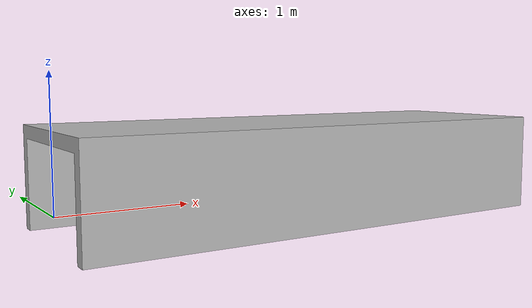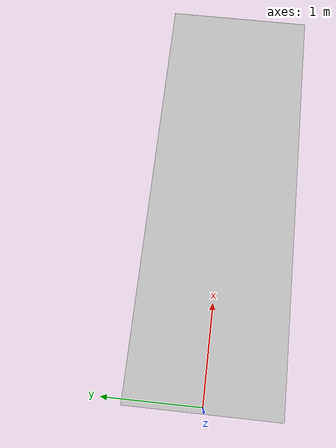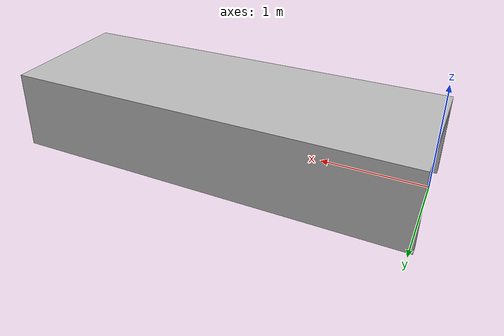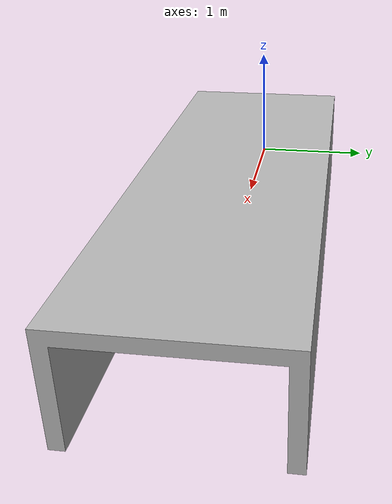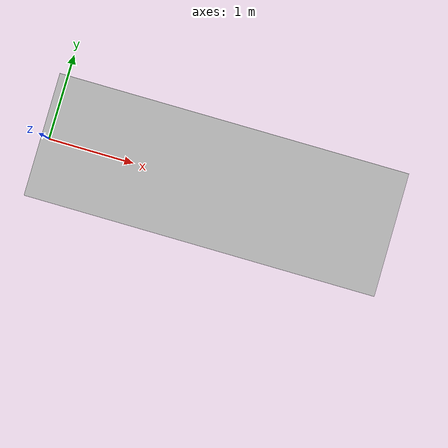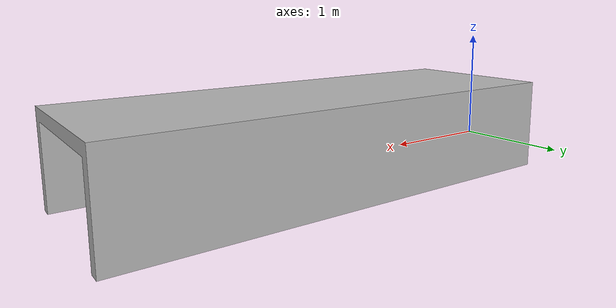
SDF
<?xml version="1.0" ?>
<sdf version="1.6">
  <model name="bigger_rough_3crack_2spall">
    <static>true</static>
    <link name="link">
    <inertial>
    <mass>0.01</mass>
    </inertial>
      <collision name="collision">
        <geometry>
          <mesh>
            <scale>1 1 1</scale>
            <uri>model://bigger_rough_3crack_2spall/meshes/bigger_rough_3crack_2spall.dae</uri>
          </mesh>
        </geometry>
      </collision>

      <visual name="visual">
          <geometry>
            <mesh>
              <scale>1 1 1</scale>
              <uri>model://bigger_rough_3crack_2spall/meshes/bigger_rough_3crack_2spall.dae</uri>
            </mesh>
          </geometry>
      </visual>
    </link>
  </model>
</sdf>
